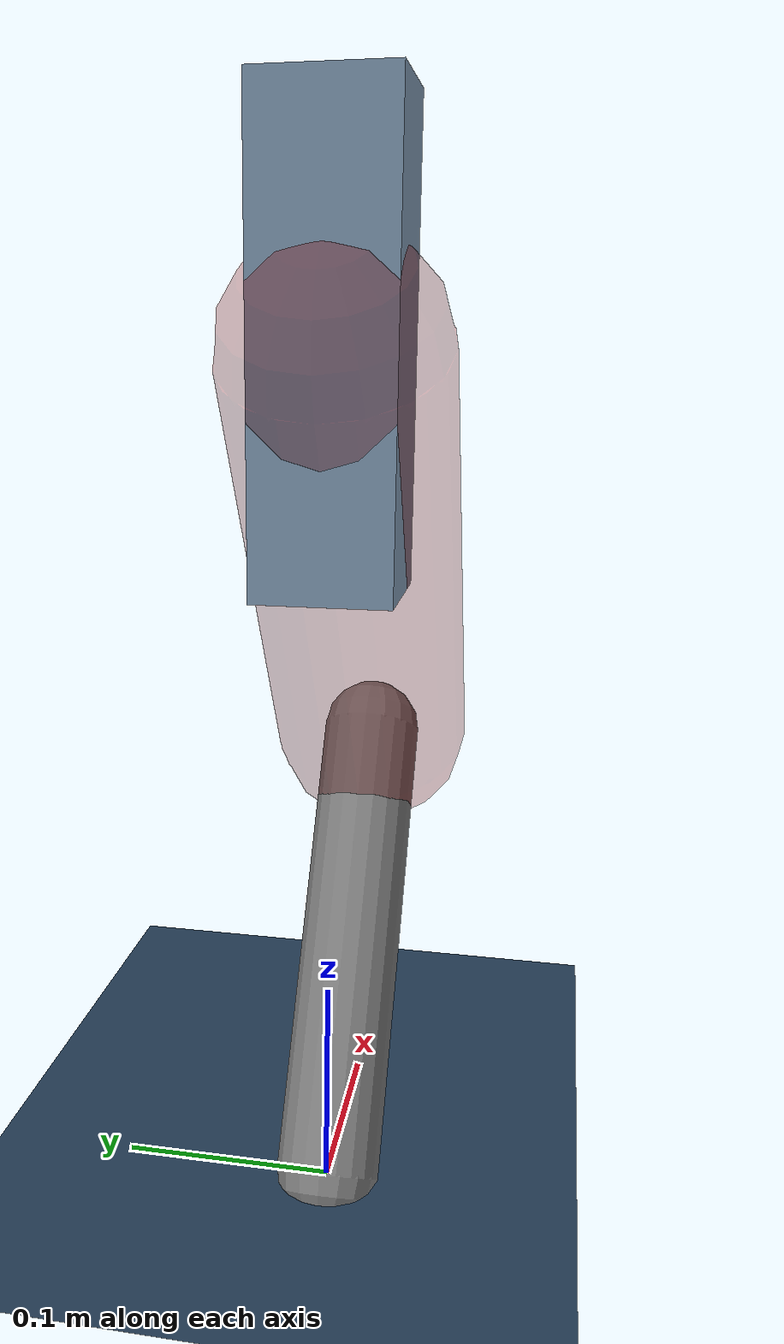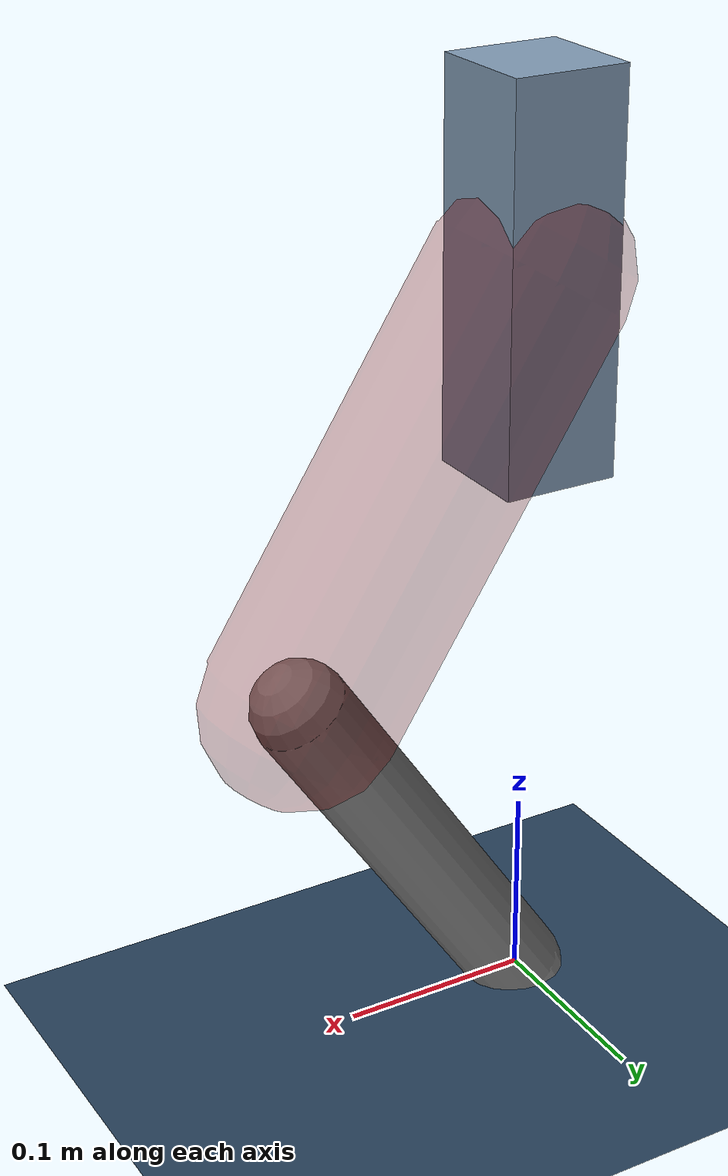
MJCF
<mujoco model="Hopper2D">
	<compiler inertiafromgeom="true" angle="radian" />
	<option timestep="0.001" integrator="implicit" cone="elliptic" solver="Newton" tolerance="1e-10" />

	<default>
		<geom contype="1" conaffinity="1" condim="3" friction="2 0.005 0.0001" solref="0.005 1" />
		<joint limited="true" damping="0.1" />
	</default>

	<asset>
		<texture name="skybox" type="skybox" builtin="gradient" rgb1=".4 .6 .8" rgb2="0 0 0" width="800" height="800" />
		<texture name="grid" type="2d" builtin="checker" rgb1=".1 .2 .3" rgb2=".2 .3 .4" width="300" height="300" mark="edge" markrgb=".2 .3 .4" />
		<material name="ground" texture="grid" texrepeat="1 1" texuniform="true" reflectance="0.1" />
		<material name="leg" rgba="0.5 0.6 0.7 1" />
	</asset>

	<worldbody>

		<geom name="floor" type="plane" size="5 5 0.25" material="ground" />

		<light directional="false" diffuse="0.8 0.8 0.8" specular="0.3 0.3 0.3" pos="0 0 2" dir="0 0 -1" />
		<light mode="targetbodycom" target="base" directional="false" diffuse="0.8 0.8 0.8" specular="0.3 0.3 0.3" pos="0 0 2" dir="0 0 -1" />

		<camera name="fixed" pos="0 -2 1" xyaxes="1 0 0 0 0 1" />
		<camera name="tracking" mode="trackcom" pos="0 -3 1" />

		<body name="root" pos="0 0 0.3887086544054429">
			<joint name="slide_x" type="slide" axis="1 0 0" range="-100 100" />
			<joint name="slide_z" type="slide" axis="0 0 1" range="0 10" />

			<body name="base" pos="0 0 0">
				<geom name="torso" type="box" size="0.03 0.03 0.1" mass="2.047" material="leg" />

				<body name="link1" pos="0 0 0" euler="0 0.9987532540689263 0">
					<joint type="hinge" axis="0 -1 0" pos="0 0 0" name="hinge1" limited="true" range="-3.14 3.14" stiffness="0" damping="0.1" />
					<geom name="thigh" type="capsule" fromto="0 0 0 0.2351955484812187 0 0" size="0.05" rgba="0.5 0 0 0.3" mass="0.8182888712030468" />

					<body name="link2" pos="0.2351955484812187 0 0" euler="0 1.1601133544680975 0">
						<joint type="hinge" axis="0 -1 0" pos="0 0 0" name="hinge2" limited="true" range="-3.14 3.14" stiffness="0" damping="0.1" />
						<geom name="shank" type="capsule" fromto="0 0 0 0.22951212036833846 0 0" size="0.025" mass="0.42560969629467077" />

					</body>
				</body>
			</body>
		</body>
	</worldbody>

	<actuator>
		<motor name="torque1" joint="hinge1" ctrlrange="-57.50695257101629 57.50695257101629" ctrllimited="true" gear="1" />
		<motor name="torque2" joint="hinge2" ctrlrange="-37.74725435068739 37.74725435068739" ctrllimited="true" gear="1" />
	</actuator>
</mujoco>
